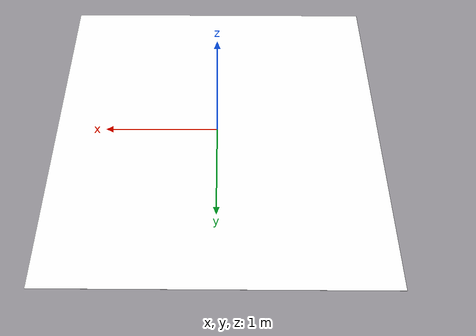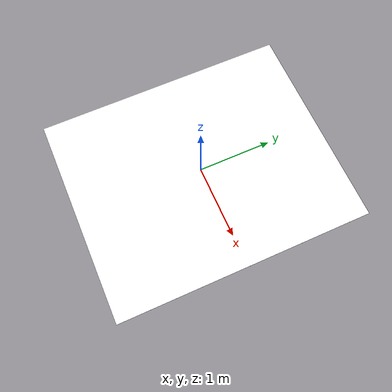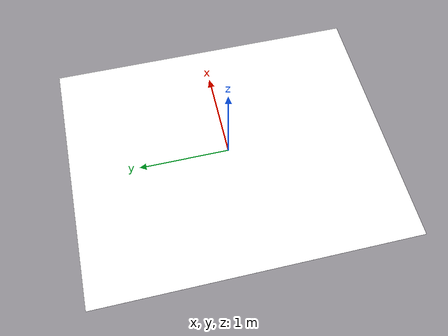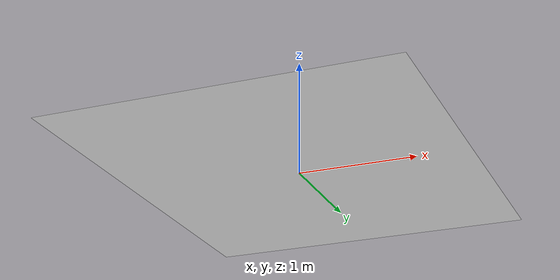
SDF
<?xml version='1.0'?>
<sdf version='1.6'>
  <model name='race_track20'>
    <static>true</static>
    <link name='link'>
      <visual name='visual'>
        <geometry>
          <box>
            <size>2.894 3.50 0.000553</size>
          </box>
        </geometry>
        <material>
          <script>
            <name>RaceTrack20/track20</name>
	    <uri>model://racetrack20/materials/scripts</uri>
            <uri>model://racetrack20/materials/textures</uri>
          </script>
          <ambient>1 1 1 1</ambient>
          <diffuse>1 1 1 1</diffuse>
          <specular>0.01 0.01 0.01 1</specular>
          <emissive>1 1 1 1</emissive>
        </material>
        <transparency>0</transparency>
      </visual>
      <collision name='collision'>
        <geometry>
          <box>
            <size>1.477 1.750 0.000553</size>
          </box>
        </geometry>
	<surface>
          <friction>
            <ode>
              <mu>100</mu>
              <mu2>50</mu2>
            </ode>
          </friction>
        </surface>
      </collision>
    </link>
  </model>
</sdf>
